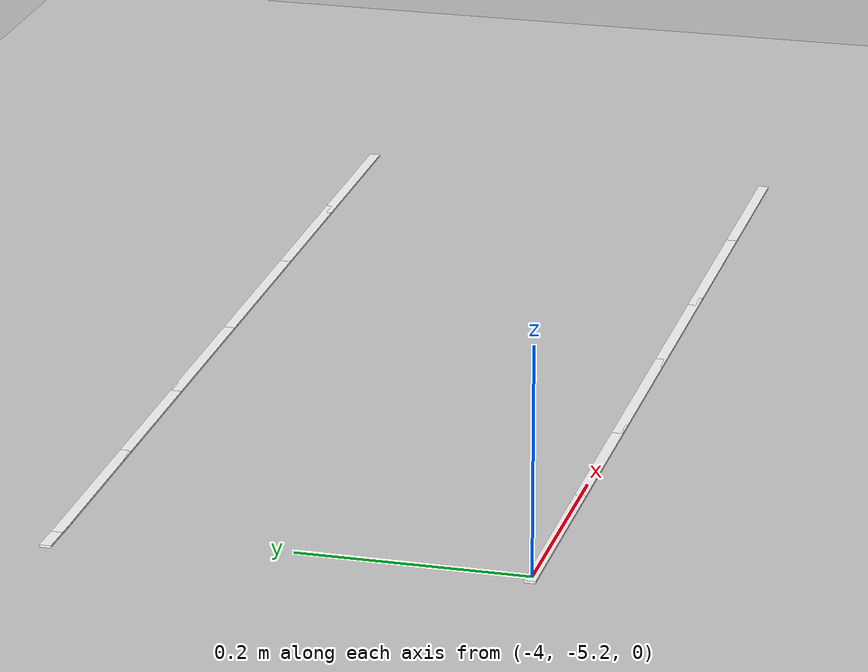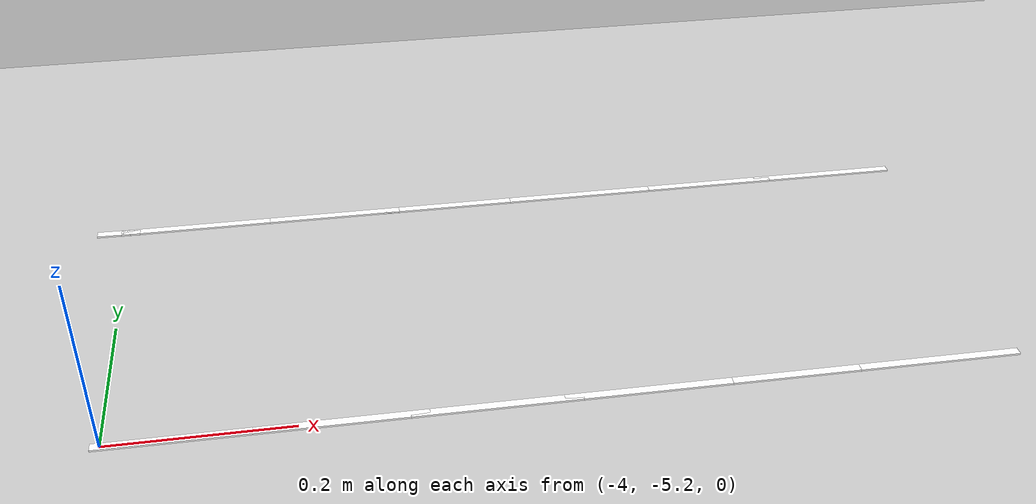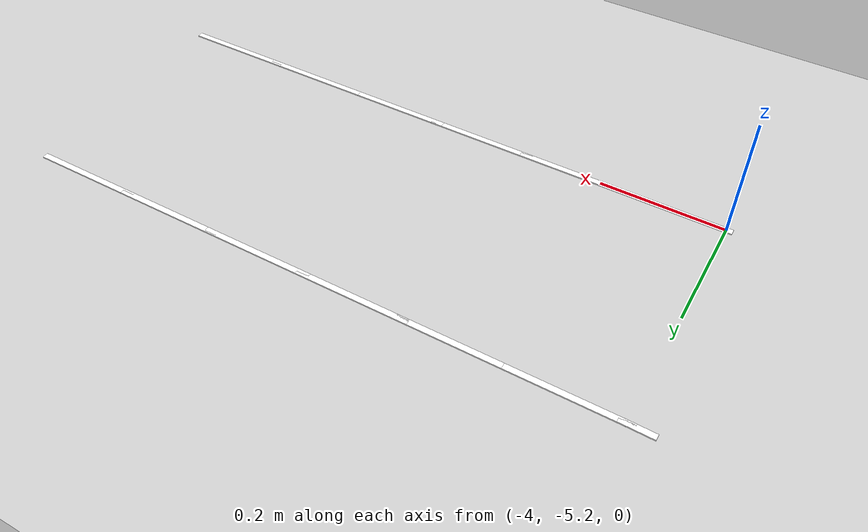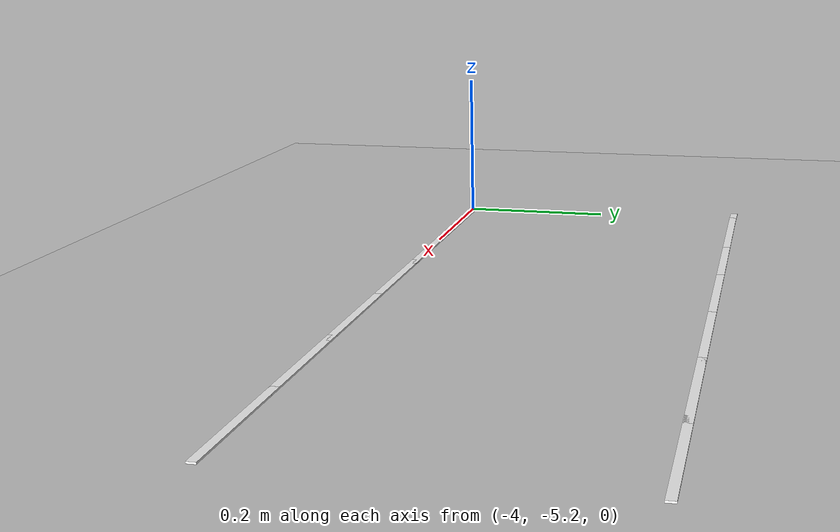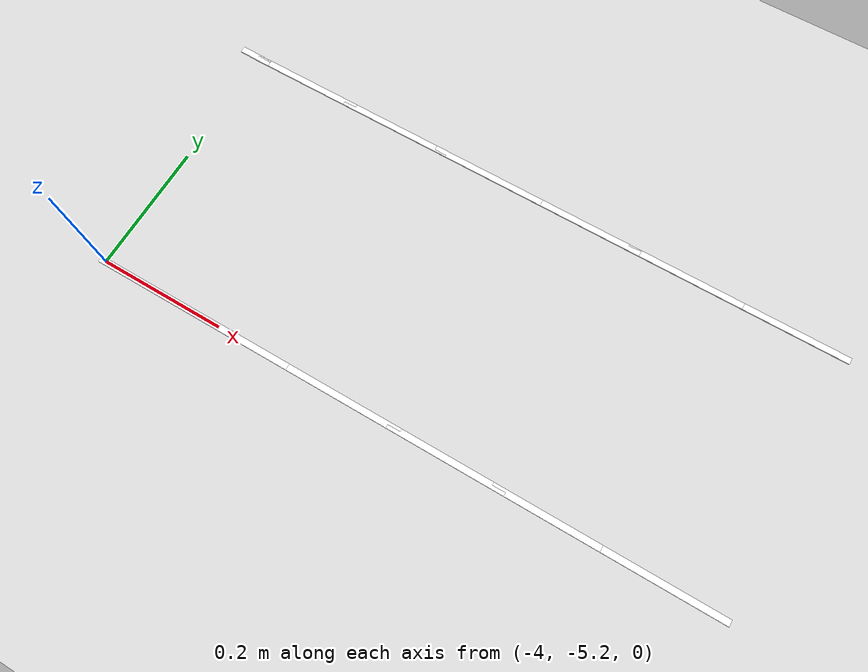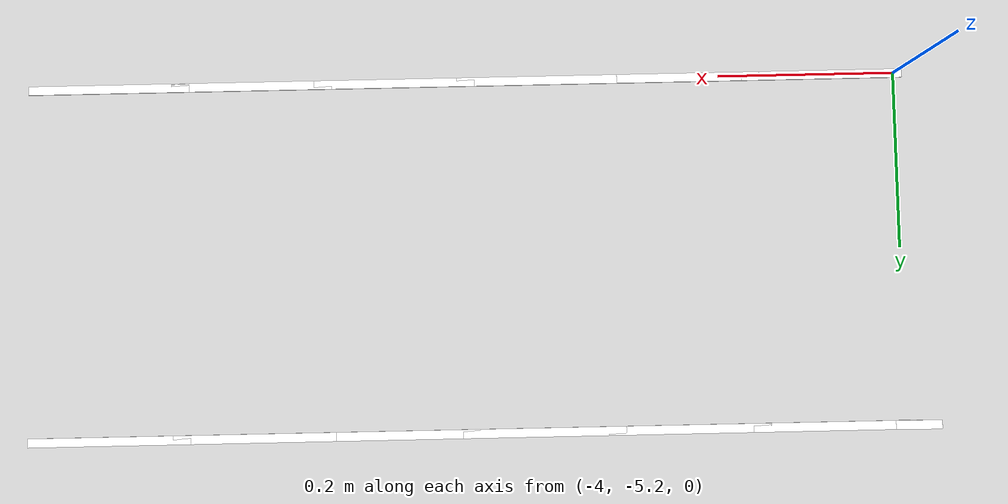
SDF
<sdf version="1.7">
 <world name="default">
  <model name="ground_plane">
   <static>1</static>
   <link name="link">
    <collision name="collision">
     <geometry><plane><normal>0 0 1</normal><size>100 100</size></plane></geometry>
     <surface>
      <contact><collide_bitmask>65535</collide_bitmask></contact>
      <friction><ode><mu>100</mu><mu2>50</mu2></ode></friction>
     </surface>
    </collision>
    <visual name="visual">
     <cast_shadows>0</cast_shadows>
     <geometry><plane><normal>0 0 1</normal><size>100 100</size></plane></geometry>
     <material>
      <script><uri>file://media/materials/scripts/gazebo.material</uri><name>Gazebo/Grey</name></script>
     </material>
    </visual>
   </link>
  </model>
  <model name="lane_line_left_0">
   <static>1</static>
   <link name="link">
    <pose>0 0 -0.004 0 -0 0</pose>
    <visual name="visual">
     <geometry><box><size>0.1833 0.01 0.01</size></box></geometry>
     <material><ambient>1 1 1 1</ambient><diffuse>1 1 1 1</diffuse></material>
    </visual>
    <collision name="collision"><geometry><box><size>0.1833 0.01 0.01</size></box></geometry></collision>
   </link>
   <pose>-3.91837 -4.8 0 0 -0 0</pose>
  </model>
  <model name="lane_line_right_0">
   <static>1</static>
   <link name="link">
    <pose>0 0 -0.004 0 -0 0</pose>
    <visual name="visual">
     <geometry><box><size>0.1833 0.01 0.01</size></box></geometry>
     <material><ambient>1 1 1 1</ambient><diffuse>1 1 1 1</diffuse></material>
    </visual>
    <collision name="collision"><geometry><box><size>0.1833 0.01 0.01</size></box></geometry></collision>
   </link>
   <pose>-3.91837 -5.2 0 0 -0 0</pose>
  </model>
  <model name="lane_line_left_1">
   <static>1</static>
   <link name="link">
    <pose>0 0 -0.004 0 -0 0</pose>
    <visual name="visual">
     <geometry><box><size>0.1833 0.01 0.01</size></box></geometry>
     <material><ambient>1 1 1 1</ambient><diffuse>1 1 1 1</diffuse></material>
    </visual>
    <collision name="collision"><geometry><box><size>0.1833 0.01 0.01</size></box></geometry></collision>
   </link>
   <pose>-3.7551 -4.8 0 0 -0 0</pose>
  </model>
  <model name="lane_line_right_1">
   <static>1</static>
   <link name="link">
    <pose>0 0 -0.004 0 -0 0</pose>
    <visual name="visual">
     <geometry><box><size>0.1833 0.01 0.01</size></box></geometry>
     <material><ambient>1 1 1 1</ambient><diffuse>1 1 1 1</diffuse></material>
    </visual>
    <collision name="collision"><geometry><box><size>0.1833 0.01 0.01</size></box></geometry></collision>
   </link>
   <pose>-3.7551 -5.2 0 0 -0 0</pose>
  </model>
  <model name="lane_line_left_2">
   <static>1</static>
   <link name="link">
    <pose>0 0 -0.004 0 -0 0</pose>
    <visual name="visual">
     <geometry><box><size>0.1833 0.01 0.01</size></box></geometry>
     <material><ambient>1 1 1 1</ambient><diffuse>1 1 1 1</diffuse></material>
    </visual>
    <collision name="collision"><geometry><box><size>0.1833 0.01 0.01</size></box></geometry></collision>
   </link>
   <pose>-3.59184 -4.8 0 0 -0 0</pose>
  </model>
  <model name="lane_line_right_2">
   <static>1</static>
   <link name="link">
    <pose>0 0 -0.004 0 -0 0</pose>
    <visual name="visual">
     <geometry><box><size>0.1833 0.01 0.01</size></box></geometry>
     <material><ambient>1 1 1 1</ambient><diffuse>1 1 1 1</diffuse></material>
    </visual>
    <collision name="collision"><geometry><box><size>0.1833 0.01 0.01</size></box></geometry></collision>
   </link>
   <pose>-3.59184 -5.2 0 0 -0 0</pose>
  </model>
  <model name="lane_line_left_3">
   <static>1</static>
   <link name="link">
    <pose>0 0 -0.004 0 -0 0</pose>
    <visual name="visual">
     <geometry><box><size>0.1833 0.01 0.01</size></box></geometry>
     <material><ambient>1 1 1 1</ambient><diffuse>1 1 1 1</diffuse></material>
    </visual>
    <collision name="collision"><geometry><box><size>0.1833 0.01 0.01</size></box></geometry></collision>
   </link>
   <pose>-3.42857 -4.8 0 0 -0 0</pose>
  </model>
  <model name="lane_line_right_3">
   <static>1</static>
   <link name="link">
    <pose>0 0 -0.004 0 -0 0</pose>
    <visual name="visual">
     <geometry><box><size>0.1833 0.01 0.01</size></box></geometry>
     <material><ambient>1 1 1 1</ambient><diffuse>1 1 1 1</diffuse></material>
    </visual>
    <collision name="collision"><geometry><box><size>0.1833 0.01 0.01</size></box></geometry></collision>
   </link>
   <pose>-3.42857 -5.2 0 0 -0 0</pose>
  </model>
  <model name="lane_line_left_4">
   <static>1</static>
   <link name="link">
    <pose>0 0 -0.004 0 -0 0</pose>
    <visual name="visual">
     <geometry><box><size>0.1833 0.01 0.01</size></box></geometry>
     <material><ambient>1 1 1 1</ambient><diffuse>1 1 1 1</diffuse></material>
    </visual>
    <collision name="collision"><geometry><box><size>0.1833 0.01 0.01</size></box></geometry></collision>
   </link>
   <pose>-3.26531 -4.8 0 0 -0 0</pose>
  </model>
  <model name="lane_line_right_4">
   <static>1</static>
   <link name="link">
    <pose>0 0 -0.004 0 -0 0</pose>
    <visual name="visual">
     <geometry><box><size>0.1833 0.01 0.01</size></box></geometry>
     <material><ambient>1 1 1 1</ambient><diffuse>1 1 1 1</diffuse></material>
    </visual>
    <collision name="collision"><geometry><box><size>0.1833 0.01 0.01</size></box></geometry></collision>
   </link>
   <pose>-3.26531 -5.2 0 0 -0 0</pose>
  </model>
  <model name="lane_line_left_5">
   <static>1</static>
   <link name="link">
    <pose>0 0 -0.004 0 -0 0</pose>
    <visual name="visual">
     <geometry><box><size>0.1833 0.01 0.01</size></box></geometry>
     <material><ambient>1 1 1 1</ambient><diffuse>1 1 1 1</diffuse></material>
    </visual>
    <collision name="collision"><geometry><box><size>0.1833 0.01 0.01</size></box></geometry></collision>
   </link>
   <pose>-3.10204 -4.8 0 0 -0 0</pose>
  </model>
  <model name="lane_line_right_5">
   <static>1</static>
   <link name="link">
    <pose>0 0 -0.004 0 -0 0</pose>
    <visual name="visual">
     <geometry><box><size>0.1833 0.01 0.01</size></box></geometry>
     <material><ambient>1 1 1 1</ambient><diffuse>1 1 1 1</diffuse></material>
    </visual>
    <collision name="collision"><geometry><box><size>0.1833 0.01 0.01</size></box></geometry></collision>
   </link>
   <pose>-3.10204 -5.2 0 0 -0 0</pose>
  </model>
  <model name="lane_line_left_398">
   <static>1</static>
   <link name="link">
    <pose>0 0 -0.004 0 -0 0</pose>
    <visual name="visual">
     <geometry><box><size>0.0521 0.01 0.01</size></box></geometry>
     <material><ambient>1 1 1 1</ambient><diffuse>1 1 1 1</diffuse></material>
    </visual>
    <collision name="collision"><geometry><box><size>0.0521 0.01 0.01</size></box></geometry></collision>
   </link>
   <pose>-4.01282 -4.79977 0 0 0 -0.016029</pose>
  </model>
 </world>
</sdf>
